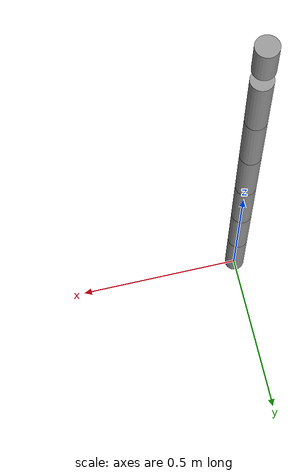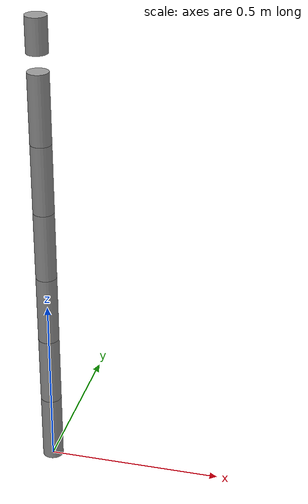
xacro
<?xml version="1.0"?>
<robot name="kr1205" xmlns:xacro="http://www.ros.org/wiki/xacro">

  <material name="gray">
    <color rgba="0.6 0.6 0.6 1.0"/>
  </material>

  <!-- Base link -->
  <link name="base_link"/>

  <!-- Joint 1 -->
  <joint name="joint_1" type="revolute">
    <parent link="base_link"/>
    <child link="link_1"/>
    <origin xyz="0 0 0.1" rpy="0 0 0"/>
    <axis xyz="0 0 1"/>
    <limit lower="-3.14" upper="3.14" effort="100" velocity="1.0"/>
  </joint>
  <link name="link_1">
    <visual>
      <geometry><cylinder radius="0.03" length="0.2"/></geometry>
      <material name="gray"/>
    </visual>
  </link>

  <!-- Joint 2 -->
  <joint name="joint_2" type="revolute">
    <parent link="link_1"/>
    <child link="link_2"/>
    <origin xyz="0 0 0.2" rpy="0 0 0"/>
    <axis xyz="0 1 0"/>
    <limit lower="-3.14" upper="3.14" effort="100" velocity="1.0"/>
  </joint>
  <link name="link_2">
    <visual>
      <geometry><cylinder radius="0.03" length="0.2"/></geometry>
      <material name="gray"/>
    </visual>
  </link>

  <!-- Joint 3 -->
  <joint name="joint_3" type="revolute">
    <parent link="link_2"/>
    <child link="link_3"/>
    <origin xyz="0 0 0.2" rpy="0 0 0"/>
    <axis xyz="0 0 1"/>
    <limit lower="-3.14" upper="3.14" effort="100" velocity="1.0"/>
  </joint>
  <link name="link_3">
    <visual>
      <geometry><cylinder radius="0.03" length="0.2"/></geometry>
      <material name="gray"/>
    </visual>
  </link>

  <!-- Joint 4 -->
  <joint name="joint_4" type="revolute">
    <parent link="link_3"/>
    <child link="link_4"/>
    <origin xyz="0 0 0.2" rpy="0 0 0"/>
    <axis xyz="0 1 0"/>
    <limit lower="-3.14" upper="3.14" effort="100" velocity="1.0"/>
  </joint>
  <link name="link_4">
    <visual>
      <geometry><cylinder radius="0.03" length="0.2"/></geometry>
      <material name="gray"/>
    </visual>
  </link>

  <!-- Joint 5 -->
  <joint name="joint_5" type="revolute">
    <parent link="link_4"/>
    <child link="link_5"/>
    <origin xyz="0 0 0.2" rpy="0 0 0"/>
    <axis xyz="0 0 1"/>
    <limit lower="-3.14" upper="3.14" effort="100" velocity="1.0"/>
  </joint>
  <link name="link_5">
    <visual>
      <geometry><cylinder radius="0.03" length="0.2"/></geometry>
      <material name="gray"/>
    </visual>
  </link>

  <!-- Joint 6 -->
  <joint name="joint_6" type="revolute">
    <parent link="link_5"/>
    <child link="link_6"/>
    <origin xyz="0 0 0.2" rpy="0 0 0"/>
    <axis xyz="0 1 0"/>
    <limit lower="-3.14" upper="3.14" effort="100" velocity="1.0"/>
  </joint>
  <link name="link_6">
    <visual>
      <geometry><cylinder radius="0.03" length="0.2"/></geometry>
      <material name="gray"/>
    </visual>
  </link>

  <!-- Joint 7 -->
  <joint name="joint_7" type="revolute">
    <parent link="link_6"/>
    <child link="link_7"/>
    <origin xyz="0 0 0.2" rpy="0 0 0"/>
    <axis xyz="0 0 1"/>
    <limit lower="-3.14" upper="3.14" effort="100" velocity="1.0"/>
  </joint>
  <link name="link_7">
    <visual>
      <geometry><cylinder radius="0.03" length="0.1"/></geometry>
      <material name="gray"/>
    </visual>
  </link>

</robot>
